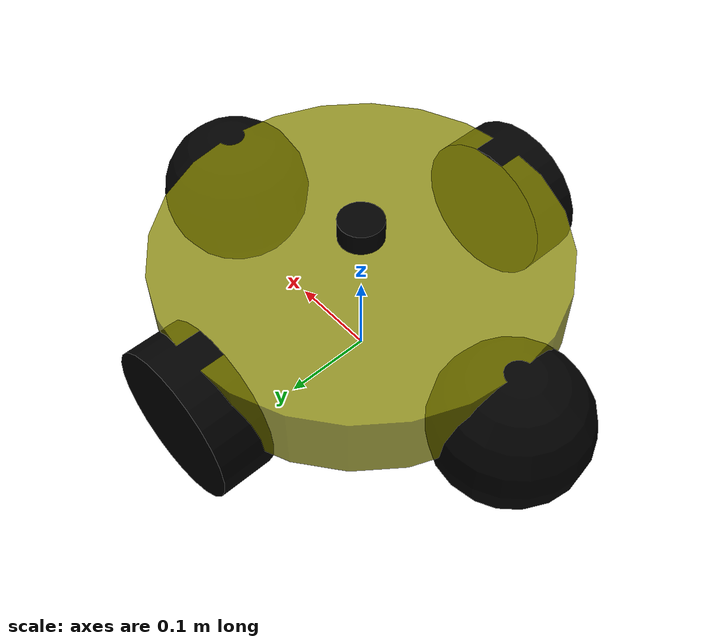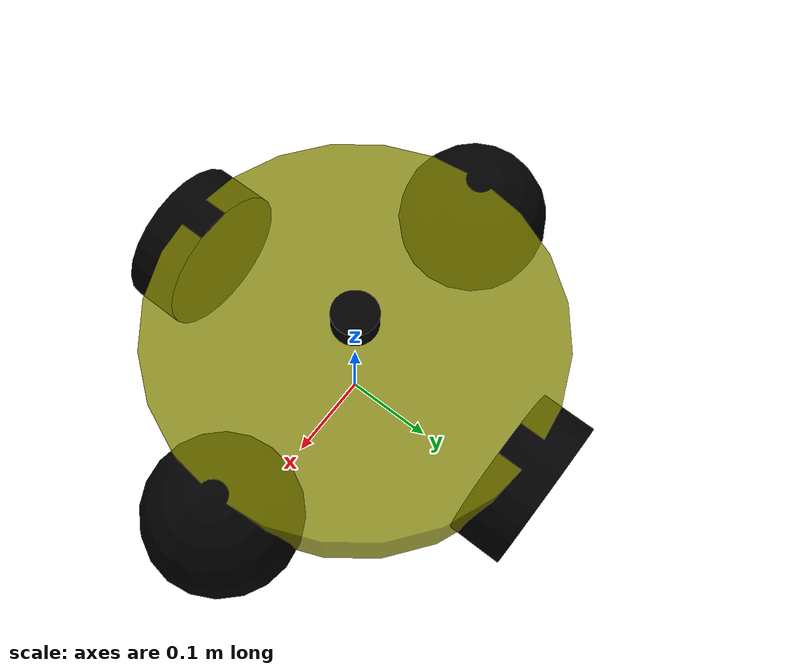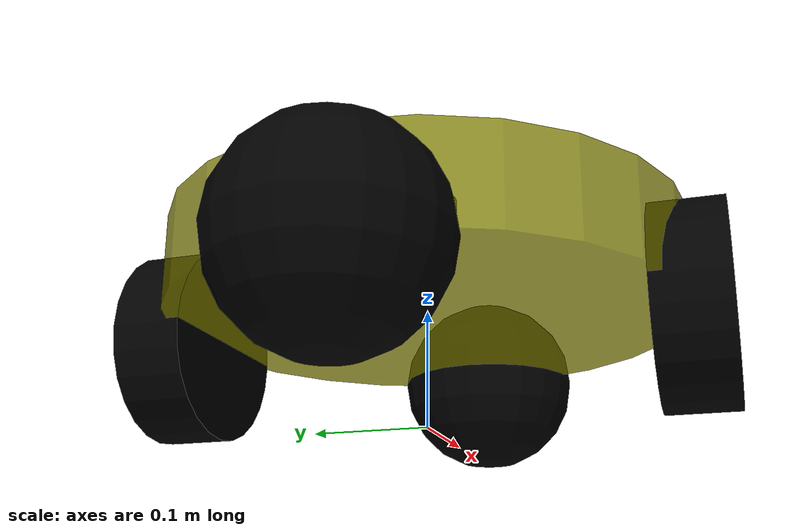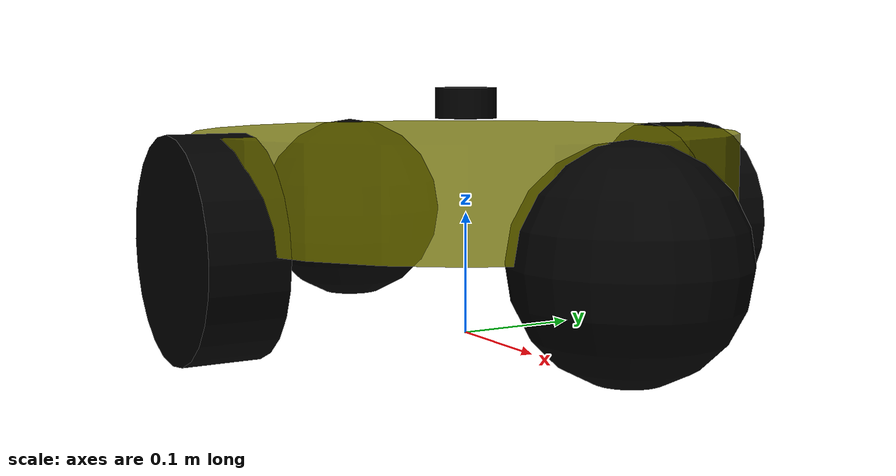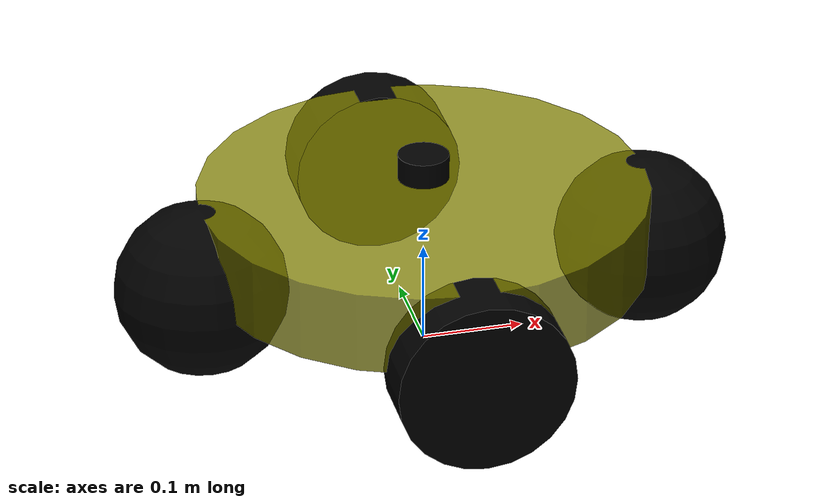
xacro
<robot name="robot" xmlns:xacro="http://wiki.ros.org/xacro">
    <!--xacro-->
    <xacro:include filename="ineritial.xacro"/>
    <xacro:include filename="base.xacro"/>
    <xacro:include filename="laser.xacro"/>

    <!--gazebo-->
    <xacro:include filename="../gazebo/base.xacro"/>
    <xacro:include filename="../gazebo/laser.xacro"/>
</robot>

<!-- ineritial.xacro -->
<robot name="ineritial" xmlns:xacro="http://wiki.ros.org/xacro">
    <!-- Macro for inertia matrix -->
    <xacro:macro name="sphere_inertial_matrix" params="m r">
        <inertial>
            <mass value="${m}" />
            <inertia ixx="${2*m*r*r/5}" ixy="0" ixz="0"
                iyy="${2*m*r*r/5}" iyz="0"
                izz="${2*m*r*r/5}" />
        </inertial>
    </xacro:macro>

    <xacro:macro name="cylinder_inertial_matrix" params="m r h">
        <inertial>
            <mass value="${m}" />
            <inertia ixx="${m*(3*r*r+h*h)/12}" ixy = "0" ixz = "0"
                iyy="${m*(3*r*r+h*h)/12}" iyz = "0"
                izz="${m*r*r/2}" />
        </inertial>
    </xacro:macro>

    <xacro:macro name="box_inertial_matrix" params="m l w h">
       <inertial>
               <mass value="${m}" />
               <inertia ixx="${m*(h*h + l*l)/12}" ixy = "0" ixz = "0"
                   iyy="${m*(w*w + l*l)/12}" iyz= "0"
                   izz="${m*(w*w + h*h)/12}" />
       </inertial>
   </xacro:macro>
</robot>

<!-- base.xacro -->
<robot name="base" xmlns:xacro="http://wiki.ros.org/xacro">
    <!--define color-->
    <material name="black">
        <color rgba="0 0 0 1"/>
    </material>
    <material name="yellow">
        <color rgba="0.5 0.5 0 0.8"/>
    </material>

    <!--property-->
    <xacro:property name="PI" value="3.1415927" />

    <!--driving wheel property-->
    <xacro:property name="wheel_driving_radius" value="0.085"/>
    <xacro:property name="wheel_driving_width" value="0.06"/>
    <xacro:property name="wheel_driving_between" value="0.44"/>
    <!--define driving wheel-->
    <xacro:macro name="wheel_driving" params="wheel_name flag">
        <link name="${wheel_name}">
            <visual>
                <geometry name="wheel_geometry">
                    <cylinder radius="${wheel_driving_radius}" length="${wheel_driving_width}"/>
                </geometry>
                <origin xyz="0 0 0" rpy="${PI/2} 0 0"/>
                <material name="black"/>
            </visual>
            <collision>
                <geometry name="wheel_geometry">
                    <cylinder radius="${wheel_driving_radius}" length="${wheel_driving_width}"/>
                    </geometry>
                <origin xyz="0.0 0.0 0.0" rpy="${PI/2} 0.0 0.0" />
            </collision>
            <xacro:cylinder_inertial_matrix m="10" r="${wheel_driving_radius}" h="${wheel_driving_width}"/>
        </link>
        <joint name="base_${wheel_name}_joint" type="continuous">
            <parent link="base_link"/>
            <child link="${wheel_name}"/>
            <origin xyz="0 ${(wheel_driving_between/2) * flag} 0" rpy="0 0 0"/>
            <axis xyz="0 1 0"/>
        </joint>
    </xacro:macro>

    <!--trainning wheel property-->
    <xacro:property name="wheel_trainning_radius" value="0.085"/>
    <xacro:property name="wheel_trainning_between" value="0.44"/>
    <!--define trainning wheel-->
    <xacro:macro name="wheel_trainning" params="wheel_name flag">
        <link name="${wheel_name}">
            <visual>
                <geometry name="wheel_geometry">
                    <sphere radius="${wheel_trainning_radius}"/>
                </geometry>
                <origin xyz="0 0 0" rpy="0 0 0"/>
                <material name="black"/>
            </visual>
            <collision>
                <geometry name="wheel_geometry">
                    <sphere radius="${wheel_trainning_radius}"/>
                </geometry>
                <origin xyz="0 0 0" rpy="0 0 0"/>
            </collision>
            <xacro:sphere_inertial_matrix m="2" r="${wheel_trainning_radius}"/>
        </link>

        <joint name="${wheel_name}_joint" type="continuous">
            <parent link="base_link"/>
            <child link="${wheel_name}"/>
            <origin xyz="${(wheel_trainning_between/2) * flag} 0 0" rpy="0 0 0"/>
            <axis xyz="1 1 1"/>
        </joint>
    </xacro:macro>

    <!--base_footprint-->
    <xacro:property name="base_footprint_radius" value="0.001"/>
    <link name="base_footprint">
        <visual>
            <geometry>
                <sphere radius="${base_footprint_radius}" />
            </geometry>
        </visual>
    </link>

    <!--base link property-->
    <xacro:property name="base_radius" value="0.22"/>
    <xacro:property name="base_length" value="0.08"/>
    <xacro:property name="base_margin_bottom" value="0.085"/>
    <!--base link-->
    <link name="base_link">
        <visual>
            <geometry name="base_geometry">
                <cylinder radius="${base_radius}" length="${base_length}"/>
            </geometry>
            <origin xyz="0 0 ${base_margin_bottom/2}" rpy="0 0 0"/>
            <material name="yellow"/>
        </visual>
        <collision>
            <geometry name="base_geometry">
                <cylinder radius="${base_radius}" length="${base_length}"/>
            </geometry>
            <origin xyz="0 0 0" rpy="0 0 0"/>
        </collision>
        <xacro:cylinder_inertial_matrix m="15" r="${base_radius}" h="${base_length}"/>
    </link>

    <joint name="base_link_joint" type="fixed">
        <parent link="base_footprint" />
        <child link="base_link" />
        <origin xyz="0 0 ${base_margin_bottom}" rpy="0 0 0"/>
    </joint>

    <!--left wheel-->
    <xacro:wheel_driving wheel_name="l_wheel" flag="1"/>

    <!--right wheel-->
    <xacro:wheel_driving wheel_name="r_wheel" flag="-1"/>

    <!--front wheel-->
    <xacro:wheel_trainning wheel_name="f_wheel" flag="1"/>

    <!--back wheel-->
    <xacro:wheel_trainning wheel_name="b_wheel" flag="-1"/>

</robot>

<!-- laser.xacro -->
<robot name="laser" xmlns:xacro="http://wiki.ros.org/xacro">
    <xacro:property name="laser_length" value="0.025"/>
    <xacro:property name="laser_radius" value="0.025"/>
<!--laser position-->
    <xacro:property name="laser_joint_x" value="0"/>
    <xacro:property name="laser_joint_y" value="0"/>
    <xacro:property name="laser_joint_z" value="0.19"/>

    <link name="laser_link">
        <visual>
            <geometry>
                <cylinder radius="${laser_radius}" length="${laser_length}" />
            </geometry>
            <origin xyz="0 0 0" rpy="0 0 0"/>
            <material name="black"/>
        </visual>
    </link>
    <joint name="lasesr_joint" type="fixed">
        <parent link="base_footprint"/>
        <child link="laser_link"/>
        <origin xyz="${laser_joint_x} ${laser_joint_y} ${laser_joint_z}"/>
    </joint>
</robot>
